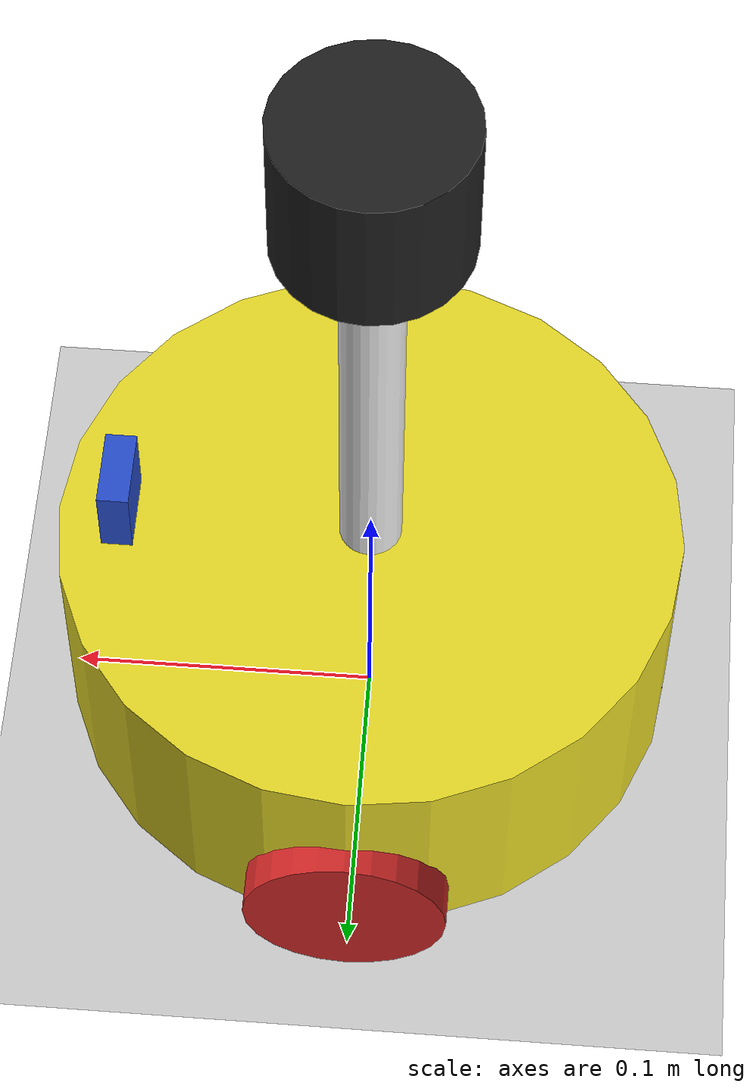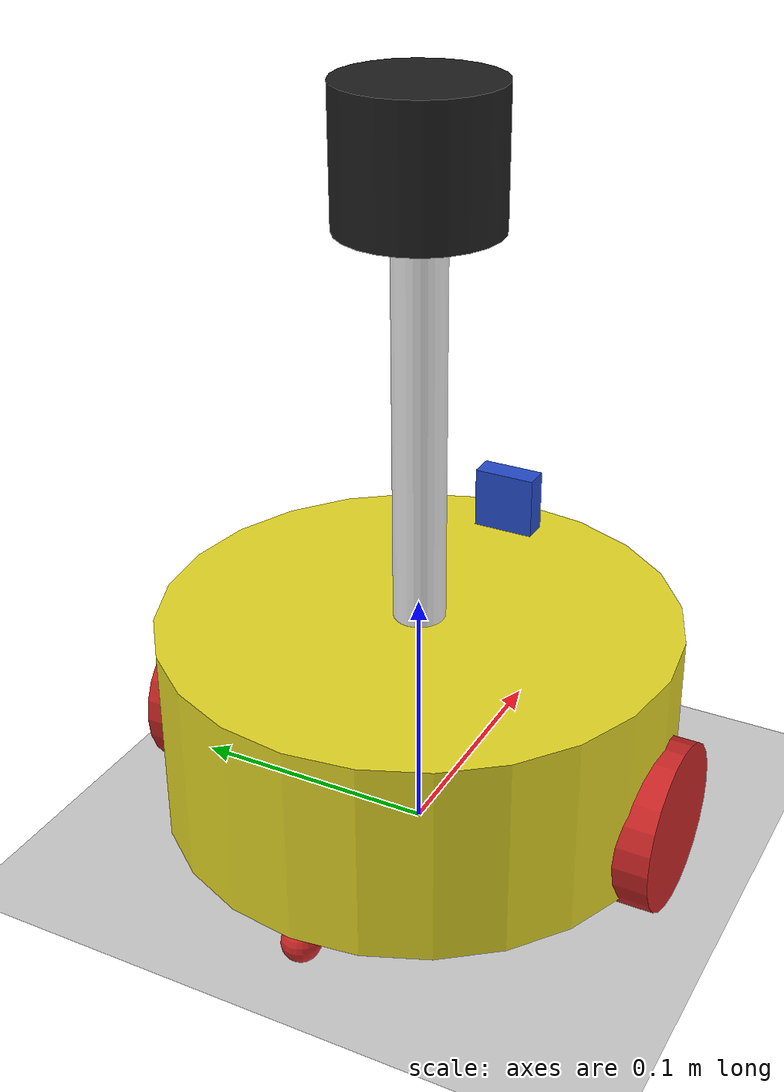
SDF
<sdf version="1.7">
 <world name="default">
  <light name="sun" type="directional">
   <pose>0 0 10 0 -0 0</pose>
   <diffuse>0.8 0.8 0.8 1</diffuse>
   <specular>0.2 0.2 0.2 1</specular>
   <attenuation>
    <range>1000</range>
    <constant>0.9</constant>
    <linear>0.01</linear>
    <quadratic>0.001</quadratic>
   </attenuation>
   <direction>-0.5 0.1 -0.9</direction>
   <spot><inner_angle>0</inner_angle><outer_angle>0</outer_angle><falloff>0</falloff></spot>
  </light>
  <model name="ground_plane">
   <static>1</static>
   <link name="link">
    <collision name="collision">
     <geometry><plane><normal>0 0 1</normal><size>100 100</size></plane></geometry>
     <surface>
      <contact><collide_bitmask>65535</collide_bitmask></contact>
      <friction><ode><mu>100</mu><mu2>50</mu2></ode></friction>
     </surface>
    </collision>
    <visual name="visual">
     <cast_shadows>0</cast_shadows>
     <geometry><plane><normal>0 0 1</normal><size>100 100</size></plane></geometry>
     <material>
      <script><uri>file://media/materials/scripts/gazebo.material</uri><name>Gazebo/Grey</name></script>
     </material>
    </visual>
   </link>
  </model>
  <gravity>0 0 -9.8</gravity>
  <magnetic_field>6e-06 2.3e-05 -4.2e-05</magnetic_field>
  <atmosphere type="adiabatic"/>
  <physics type="ode">
   <max_step_size>0.001</max_step_size>
   <real_time_factor>1</real_time_factor>
   <real_time_update_rate>1000</real_time_update_rate>
  </physics>
  <scene><ambient>0.4 0.4 0.4 1</ambient><background>0.7 0.7 0.7 1</background><shadows>1</shadows></scene>
  <spherical_coordinates>
   <surface_model>EARTH_WGS84</surface_model>
   <latitude_deg>0</latitude_deg>
   <longitude_deg>0</longitude_deg>
   <elevation>0</elevation>
   <heading_deg>0</heading_deg>
  </spherical_coordinates>
  <model name="mycar">
   <link name="base_footprint">
    <inertial>
     <pose>0.00127 0 0.093611 0 -0 0</pose>
     <mass>0.63</mass>
     <inertia>
      <ixx>0.00557395</ixx>
      <ixy>0</ixy>
      <ixz>-1.11111e-05</ixz>
      <iyy>0.00563694</iyy>
      <iyz>0</iyz>
      <izz>0.00261003</izz>
     </inertia>
    </inertial>
    <collision name="base_footprint_fixed_joint_lump__base_link_collision">
     <pose>0 0 0.055 0 -0 0</pose>
     <geometry><cylinder><length>0.08</length><radius>0.1</radius></cylinder></geometry>
    </collision>
    <collision name="base_footprint_fixed_joint_lump__camera_collision_1">
     <pose>0.08 0 0.1075 0 -0 0</pose>
     <geometry><box><size>0.01 0.025 0.025</size></box></geometry>
    </collision>
    <collision name="base_footprint_fixed_joint_lump__support_collision_2">
     <pose>0 0 0.17 0 -0 0</pose>
     <geometry><cylinder><length>0.15</length><radius>0.01</radius></cylinder></geometry>
    </collision>
    <collision name="base_footprint_fixed_joint_lump__laser_collision_3">
     <pose>0 0 0.27 0 -0 0</pose>
     <geometry><cylinder><length>0.05</length><radius>0.03</radius></cylinder></geometry>
    </collision>
    <visual name="base_footprint_visual"><geometry><sphere><radius>0.001</radius></sphere></geometry></visual>
    <visual name="base_footprint_fixed_joint_lump__base_link_visual_1">
     <pose>0 0 0.055 0 -0 0</pose>
     <geometry><cylinder><length>0.08</length><radius>0.1</radius></cylinder></geometry>
     <material>
      <script><name>Gazebo/Yellow</name><uri>file://media/materials/scripts/gazebo.material</uri></script>
     </material>
    </visual>
    <visual name="base_footprint_fixed_joint_lump__camera_visual_2">
     <pose>0.08 0 0.1075 0 -0 0</pose>
     <geometry><box><size>0.01 0.025 0.025</size></box></geometry>
     <material>
      <script><name>Gazebo/Blue</name><uri>file://media/materials/scripts/gazebo.material</uri></script>
     </material>
    </visual>
    <visual name="base_footprint_fixed_joint_lump__support_visual_3">
     <pose>0 0 0.17 0 -0 0</pose>
     <geometry><cylinder><length>0.15</length><radius>0.01</radius></cylinder></geometry>
     <material>
      <script><name>Gazebo/White</name><uri>file://media/materials/scripts/gazebo.material</uri></script>
     </material>
    </visual>
    <visual name="base_footprint_fixed_joint_lump__laser_visual_4">
     <pose>0 0 0.27 0 -0 0</pose>
     <geometry><cylinder><length>0.05</length><radius>0.03</radius></cylinder></geometry>
     <material>
      <script><name>Gazebo/Black</name><uri>file://media/materials/scripts/gazebo.material</uri></script>
     </material>
    </visual>
   </link>
   <joint name="back_wheel2base_link" type="revolute">
    <pose relative_to="base_footprint">-0.0925 0 0.0075 0 -0 0</pose>
    <parent>base_footprint</parent>
    <child>back_wheel</child>
    <axis>
     <xyz>1 1 1</xyz>
     <limit><lower>-1e+16</lower><upper>1e+16</upper></limit>
     <dynamics><spring_reference>0</spring_reference><spring_stiffness>0</spring_stiffness></dynamics>
    </axis>
   </joint>
   <link name="back_wheel">
    <pose relative_to="back_wheel2base_link">0 0 0 0 -0 0</pose>
    <inertial>
     <mass>0.03</mass>
     <inertia>
      <ixx>6.75e-07</ixx>
      <ixy>0</ixy>
      <ixz>0</ixz>
      <iyy>6.75e-07</iyy>
      <iyz>0</iyz>
      <izz>6.75e-07</izz>
     </inertia>
    </inertial>
    <collision name="back_wheel_collision">
     <geometry><sphere><radius>0.0075</radius></sphere></geometry>
    </collision>
    <visual name="back_wheel_visual">
     <geometry><sphere><radius>0.0075</radius></sphere></geometry>
     <material>
      <script><name>Gazebo/Red</name><uri>file://media/materials/scripts/gazebo.material</uri></script>
     </material>
    </visual>
   </link>
   <joint name="front_wheel2base_link" type="revolute">
    <pose relative_to="base_footprint">0.0925 0 0.0075 0 -0 0</pose>
    <parent>base_footprint</parent>
    <child>front_wheel</child>
    <axis>
     <xyz>1 1 1</xyz>
     <limit><lower>-1e+16</lower><upper>1e+16</upper></limit>
     <dynamics><spring_reference>0</spring_reference><spring_stiffness>0</spring_stiffness></dynamics>
    </axis>
   </joint>
   <link name="front_wheel">
    <pose relative_to="front_wheel2base_link">0 0 0 0 -0 0</pose>
    <inertial>
     <mass>0.03</mass>
     <inertia>
      <ixx>6.75e-07</ixx>
      <ixy>0</ixy>
      <ixz>0</ixz>
      <iyy>6.75e-07</iyy>
      <iyz>0</iyz>
      <izz>6.75e-07</izz>
     </inertia>
    </inertial>
    <collision name="front_wheel_collision">
     <geometry><sphere><radius>0.0075</radius></sphere></geometry>
    </collision>
    <visual name="front_wheel_visual">
     <geometry><sphere><radius>0.0075</radius></sphere></geometry>
     <material>
      <script><name>Gazebo/Red</name><uri>file://media/materials/scripts/gazebo.material</uri></script>
     </material>
    </visual>
   </link>
   <joint name="left_wheel2base_link" type="revolute">
    <pose relative_to="base_footprint">0 0.1 0.0325 0 -0 0</pose>
    <parent>base_footprint</parent>
    <child>left_wheel</child>
    <axis>
     <xyz>0 1 0</xyz>
     <limit><lower>-1e+16</lower><upper>1e+16</upper></limit>
     <dynamics><spring_reference>0</spring_reference><spring_stiffness>0</spring_stiffness></dynamics>
    </axis>
   </joint>
   <link name="left_wheel">
    <pose relative_to="left_wheel2base_link">0 0 0 0 -0 0</pose>
    <inertial>
     <mass>0.05</mass>
     <inertia>
      <ixx>1.41406e-05</ixx>
      <ixy>0</ixy>
      <ixz>0</ixz>
      <iyy>1.41406e-05</iyy>
      <iyz>0</iyz>
      <izz>2.64063e-05</izz>
     </inertia>
    </inertial>
    <collision name="left_wheel_collision">
     <pose>0 0 0 1.5708 -0 0</pose>
     <geometry><cylinder><length>0.015</length><radius>0.0325</radius></cylinder></geometry>
    </collision>
    <visual name="left_wheel_visual">
     <pose>0 0 0 1.5708 -0 0</pose>
     <geometry><cylinder><length>0.015</length><radius>0.0325</radius></cylinder></geometry>
     <material>
      <script><name>Gazebo/Red</name><uri>file://media/materials/scripts/gazebo.material</uri></script>
     </material>
    </visual>
   </link>
   <joint name="right_wheel2base_link" type="revolute">
    <pose relative_to="base_footprint">0 -0.1 0.0325 0 -0 0</pose>
    <parent>base_footprint</parent>
    <child>right_wheel</child>
    <axis>
     <xyz>0 1 0</xyz>
     <limit><lower>-1e+16</lower><upper>1e+16</upper></limit>
     <dynamics><spring_reference>0</spring_reference><spring_stiffness>0</spring_stiffness></dynamics>
    </axis>
   </joint>
   <link name="right_wheel">
    <pose relative_to="right_wheel2base_link">0 0 0 0 -0 0</pose>
    <inertial>
     <mass>0.05</mass>
     <inertia>
      <ixx>1.41406e-05</ixx>
      <ixy>0</ixy>
      <ixz>0</ixz>
      <iyy>1.41406e-05</iyy>
      <iyz>0</iyz>
      <izz>2.64063e-05</izz>
     </inertia>
    </inertial>
    <collision name="right_wheel_collision">
     <pose>0 0 0 1.5708 -0 0</pose>
     <geometry><cylinder><length>0.015</length><radius>0.0325</radius></cylinder></geometry>
    </collision>
    <visual name="right_wheel_visual">
     <pose>0 0 0 1.5708 -0 0</pose>
     <geometry><cylinder><length>0.015</length><radius>0.0325</radius></cylinder></geometry>
     <material>
      <script><name>Gazebo/Red</name><uri>file://media/materials/scripts/gazebo.material</uri></script>
     </material>
    </visual>
   </link>
   <static>0</static>
   <plugin name="differential_drive_controller" filename="libgazebo_ros_diff_drive.so">
    <rosDebugLevel>Debug</rosDebugLevel>
    <publishWheelTF>1</publishWheelTF>
    <robotNamespace>/</robotNamespace>
    <publishTf>1</publishTf>
    <publishWheelJointState>1</publishWheelJointState>
    <alwaysOn>1</alwaysOn>
    <updateRate>100.0</updateRate>
    <legacyMode>1</legacyMode>
    <leftJoint>left_wheel2base_link</leftJoint>
    <rightJoint>right_wheel2base_link</rightJoint>
    <wheelSeparation>0.2</wheelSeparation>
    <wheelDiameter>0.065</wheelDiameter>
    <broadcastTF>1</broadcastTF>
    <wheelTorque>30</wheelTorque>
    <wheelAcceleration>1.8</wheelAcceleration>
    <commandTopic>cmd_vel</commandTopic>
    <odometryFrame>odom</odometryFrame>
    <odometryTopic>odom</odometryTopic>
    <robotBaseFrame>base_footprint</robotBaseFrame>
   </plugin>
   <pose>0.000198 -0.00018 0 0 0 -0.002044</pose>
  </model>
 </world>
</sdf>
